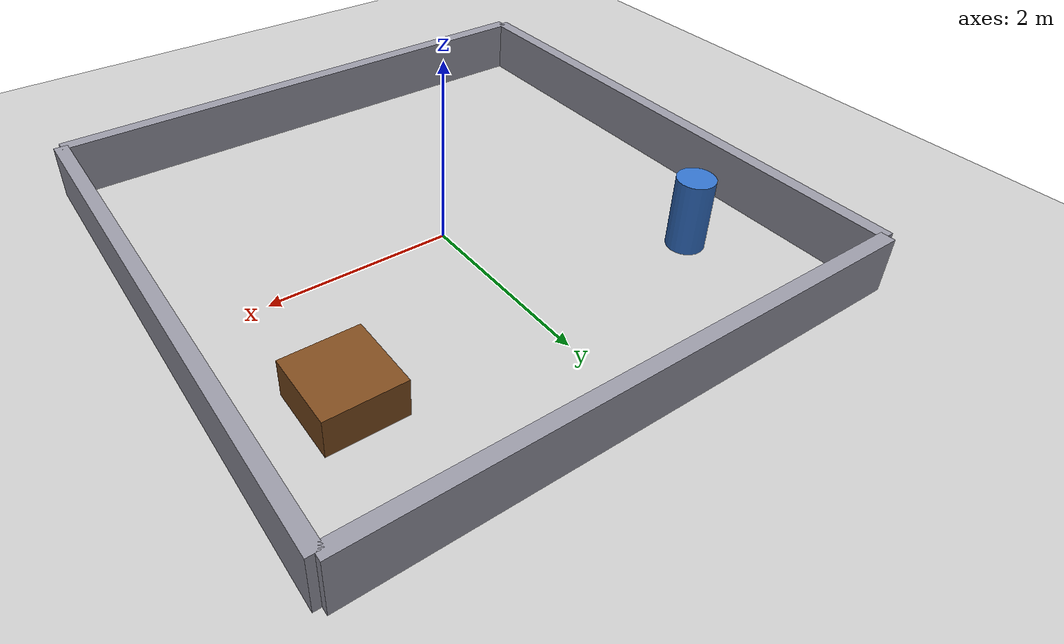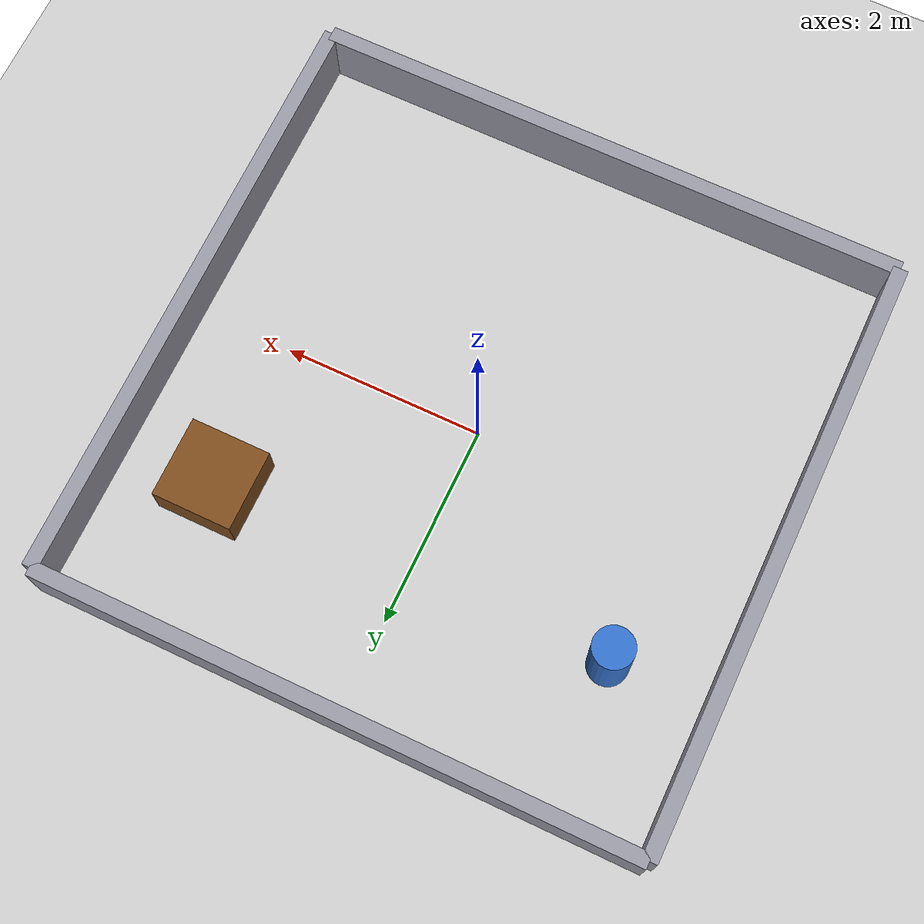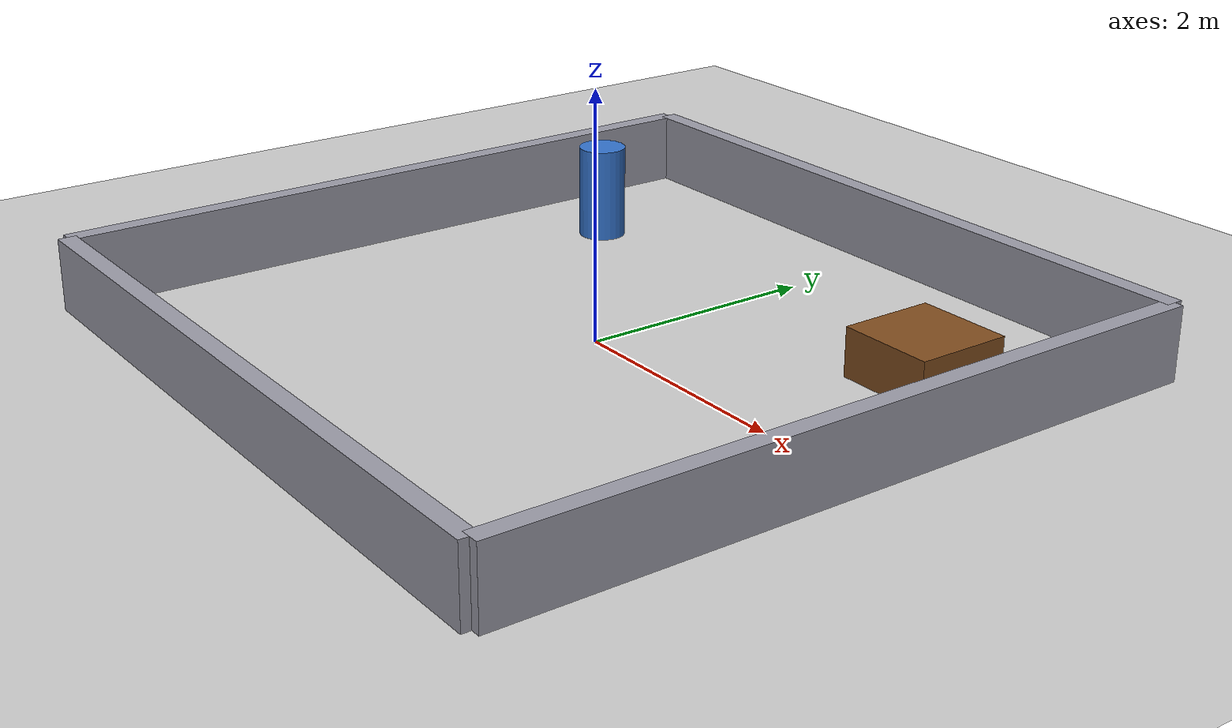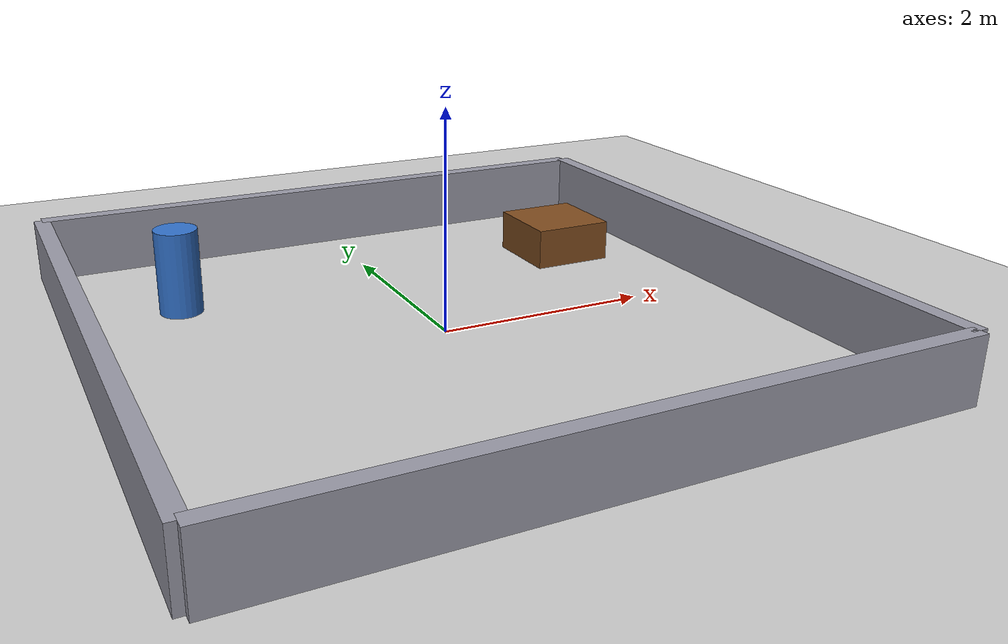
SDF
<?xml version="1.0" ?>
<sdf version="1.6">
  <world name="yahboom_room">

    <include><uri>model://sun</uri></include>
    <include><uri>model://ground_plane</uri></include>

    <scene>
      <ambient>0.5 0.5 0.5 1</ambient>
      <background>0.7 0.7 0.7 1</background>
      <shadows>true</shadows>
    </scene>

    <!-- ===== 6m x 6m perimeter walls ===== -->
    <model name="wall_north">
      <static>true</static>
      <pose>0 3 0.3 0 0 0</pose>
      <link name="link">
        <collision name="c"><geometry><box><size>6 0.15 0.6</size></box></geometry></collision>
        <visual name="v">
          <geometry><box><size>6 0.15 0.6</size></box></geometry>
          <material><ambient>0.6 0.6 0.65 1</ambient><diffuse>0.6 0.6 0.65 1</diffuse></material>
        </visual>
      </link>
    </model>
    <model name="wall_south">
      <static>true</static>
      <pose>0 -3 0.3 0 0 0</pose>
      <link name="link">
        <collision name="c"><geometry><box><size>6 0.15 0.6</size></box></geometry></collision>
        <visual name="v">
          <geometry><box><size>6 0.15 0.6</size></box></geometry>
          <material><ambient>0.6 0.6 0.65 1</ambient><diffuse>0.6 0.6 0.65 1</diffuse></material>
        </visual>
      </link>
    </model>
    <model name="wall_east">
      <static>true</static>
      <pose>3 0 0.3 0 0 0</pose>
      <link name="link">
        <collision name="c"><geometry><box><size>0.15 6 0.6</size></box></geometry></collision>
        <visual name="v">
          <geometry><box><size>0.15 6 0.6</size></box></geometry>
          <material><ambient>0.6 0.6 0.65 1</ambient><diffuse>0.6 0.6 0.65 1</diffuse></material>
        </visual>
      </link>
    </model>
    <model name="wall_west">
      <static>true</static>
      <pose>-3 0 0.3 0 0 0</pose>
      <link name="link">
        <collision name="c"><geometry><box><size>0.15 6 0.6</size></box></geometry></collision>
        <visual name="v">
          <geometry><box><size>0.15 6 0.6</size></box></geometry>
          <material><ambient>0.6 0.6 0.65 1</ambient><diffuse>0.6 0.6 0.65 1</diffuse></material>
        </visual>
      </link>
    </model>

    <!-- ===== a little static furniture ===== -->
    <model name="table">
      <static>true</static>
      <pose>2 1.5 0.2 0 0 0</pose>
      <link name="link">
        <collision name="c"><geometry><box><size>0.8 0.8 0.4</size></box></geometry></collision>
        <visual name="v">
          <geometry><box><size>0.8 0.8 0.4</size></box></geometry>
          <material><ambient>0.4 0.25 0.1 1</ambient><diffuse>0.5 0.3 0.12 1</diffuse></material>
        </visual>
      </link>
    </model>
    <model name="pillar">
      <static>true</static>
      <pose>-2 1.5 0.4 0 0 0</pose>
      <link name="link">
        <collision name="c"><geometry><cylinder><radius>0.2</radius><length>0.8</length></cylinder></geometry></collision>
        <visual name="v">
          <geometry><cylinder><radius>0.2</radius><length>0.8</length></cylinder></geometry>
          <material><ambient>0.2 0.4 0.7 1</ambient><diffuse>0.2 0.45 0.8 1</diffuse></material>
        </visual>
      </link>
    </model>

    <physics name="default_physics" default="true" type="ode">
      <max_step_size>0.001</max_step_size>
      <real_time_factor>1.0</real_time_factor>
      <real_time_update_rate>1000</real_time_update_rate>
    </physics>

  </world>
</sdf>
